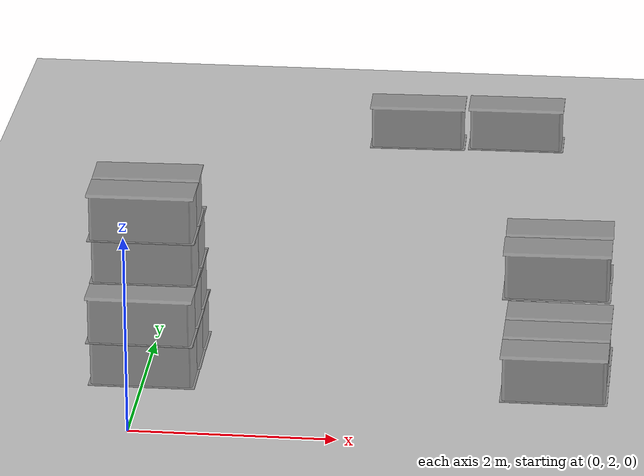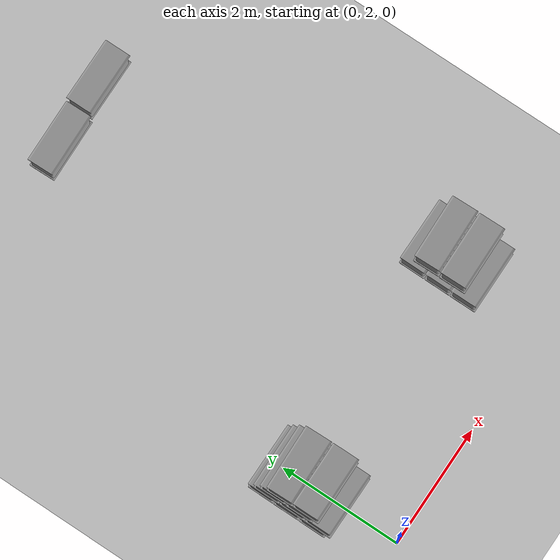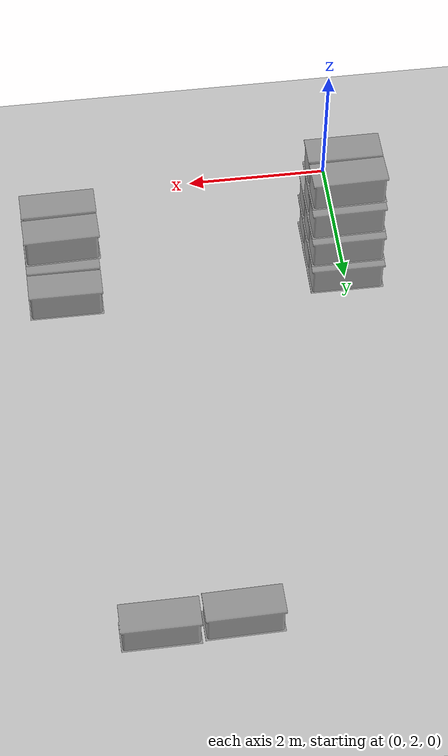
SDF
<sdf version="1.7">
 <world name="default">
  <model name="ground_plane">
   <static>1</static>
   <link name="link">
    <collision name="collision">
     <geometry><plane><normal>0 0 1</normal><size>100 100</size></plane></geometry>
     <surface><friction><ode><mu>100</mu><mu2>50</mu2></ode></friction></surface>
    </collision>
    <visual name="visual">
     <cast_shadows>0</cast_shadows>
     <geometry><plane><normal>0 0 1</normal><size>100 100</size></plane></geometry>
     <material>
      <script><uri>file://media/materials/scripts/gazebo.material</uri><name>Gazebo/Grey</name></script>
     </material>
    </visual>
   </link>
  </model>
  <model name="my_robot8">
   <link name="link_0">
    <inertial>
     <mass>1</mass>
     <inertia>
      <ixx>0.166667</ixx>
      <ixy>0</ixy>
      <ixz>0</ixz>
      <iyy>0.166667</iyy>
      <iyz>0</iyz>
      <izz>0.166667</izz>
     </inertia>
    </inertial>
    <visual name="visual">
     <geometry><mesh><uri>/home/cyun/cotton_box.stl</uri><scale>1 1 1</scale></mesh></geometry>
     <material>
      <lighting>1</lighting>
      <script><uri>file://media/materials/scripts/gazebo.material</uri><name>Gazebo/Grey</name></script>
      <shader type="pixel"><normal_map>__default__</normal_map></shader>
      <ambient>0.3 0.3 0.3 1</ambient>
      <diffuse>0.7 0.7 0.7 1</diffuse>
      <specular>0.01 0.01 0.01 1</specular>
      <emissive>0 0 0 1</emissive>
     </material>
    </visual>
    <collision name="collision">
     <geometry><mesh><uri>/home/cyun/cotton_box.stl</uri><scale>1 1 1</scale></mesh></geometry>
     <surface>
      <friction>
       <ode><mu>1</mu><mu2>1</mu2><fdir1>0 0 0</fdir1><slip1>0</slip1><slip2>0</slip2></ode>
       <torsional>
        <coefficient>1</coefficient>
        <patch_radius>0</patch_radius>
        <surface_radius>0</surface_radius>
        <use_patch_radius>1</use_patch_radius>
        <ode><slip>0</slip></ode>
       </torsional>
      </friction>
      <bounce><restitution_coefficient>0</restitution_coefficient><threshold>1e+06</threshold></bounce>
      <contact>
       <collide_without_contact>0</collide_without_contact>
       <collide_without_contact_bitmask>1</collide_without_contact_bitmask>
       <collide_bitmask>1</collide_bitmask>
       <ode>
        <soft_cfm>0</soft_cfm>
        <soft_erp>0.2</soft_erp>
        <kp>1e+13</kp>
        <kd>1</kd>
        <max_vel>0.01</max_vel>
        <min_depth>0</min_depth>
       </ode>
       <bullet>
        <split_impulse>1</split_impulse>
        <split_impulse_penetration_threshold>-0.01</split_impulse_penetration_threshold>
        <soft_cfm>0</soft_cfm>
        <soft_erp>0.2</soft_erp>
        <kp>1e+13</kp>
        <kd>1</kd>
       </bullet>
      </contact>
     </surface>
    </collision>
   </link>
   <static>0</static>
   <pose>-0.001761 3.15029 0.02 -2e-06 -1e-06 1.57546</pose>
  </model>
  <model name="my_robot9">
   <link name="link_0">
    <inertial>
     <mass>1</mass>
     <inertia>
      <ixx>0.166667</ixx>
      <ixy>0</ixy>
      <ixz>0</ixz>
      <iyy>0.166667</iyy>
      <iyz>0</iyz>
      <izz>0.166667</izz>
     </inertia>
    </inertial>
    <visual name="visual">
     <geometry><mesh><uri>/home/cyun/cotton_box.stl</uri><scale>1 1 1</scale></mesh></geometry>
     <material>
      <lighting>1</lighting>
      <script><uri>file://media/materials/scripts/gazebo.material</uri><name>Gazebo/Grey</name></script>
      <shader type="pixel"><normal_map>__default__</normal_map></shader>
      <ambient>0.3 0.3 0.3 1</ambient>
      <diffuse>0.7 0.7 0.7 1</diffuse>
      <specular>0.01 0.01 0.01 1</specular>
      <emissive>0 0 0 1</emissive>
     </material>
    </visual>
    <collision name="collision">
     <geometry><mesh><uri>/home/cyun/cotton_box.stl</uri><scale>1 1 1</scale></mesh></geometry>
     <surface>
      <friction>
       <ode><mu>1</mu><mu2>1</mu2><fdir1>0 0 0</fdir1><slip1>0</slip1><slip2>0</slip2></ode>
       <torsional>
        <coefficient>1</coefficient>
        <patch_radius>0</patch_radius>
        <surface_radius>0</surface_radius>
        <use_patch_radius>1</use_patch_radius>
        <ode><slip>0</slip></ode>
       </torsional>
      </friction>
      <bounce><restitution_coefficient>0</restitution_coefficient><threshold>1e+06</threshold></bounce>
      <contact>
       <collide_without_contact>0</collide_without_contact>
       <collide_without_contact_bitmask>1</collide_without_contact_bitmask>
       <collide_bitmask>1</collide_bitmask>
       <ode>
        <soft_cfm>0</soft_cfm>
        <soft_erp>0.2</soft_erp>
        <kp>1e+13</kp>
        <kd>1</kd>
        <max_vel>0.01</max_vel>
        <min_depth>0</min_depth>
       </ode>
       <bullet>
        <split_impulse>1</split_impulse>
        <split_impulse_penetration_threshold>-0.01</split_impulse_penetration_threshold>
        <soft_cfm>0</soft_cfm>
        <soft_erp>0.2</soft_erp>
        <kp>1e+13</kp>
        <kd>1</kd>
       </bullet>
      </contact>
     </surface>
    </collision>
   </link>
   <static>0</static>
   <pose>-0.000303 3.6022 0.019902 0.000213 0.000655 1.57922</pose>
  </model>
  <model name="my_robot10">
   <link name="link_0">
    <inertial>
     <mass>1</mass>
     <inertia>
      <ixx>0.166667</ixx>
      <ixy>0</ixy>
      <ixz>0</ixz>
      <iyy>0.166667</iyy>
      <iyz>0</iyz>
      <izz>0.166667</izz>
     </inertia>
    </inertial>
    <visual name="visual">
     <geometry><mesh><uri>/home/cyun/cotton_box.stl</uri><scale>1 1 1</scale></mesh></geometry>
     <material>
      <lighting>1</lighting>
      <script><uri>file://media/materials/scripts/gazebo.material</uri><name>Gazebo/Grey</name></script>
      <shader type="pixel"><normal_map>__default__</normal_map></shader>
      <ambient>0.3 0.3 0.3 1</ambient>
      <diffuse>0.7 0.7 0.7 1</diffuse>
      <specular>0.01 0.01 0.01 1</specular>
      <emissive>0 0 0 1</emissive>
     </material>
    </visual>
    <collision name="collision">
     <geometry><mesh><uri>/home/cyun/cotton_box.stl</uri><scale>1 1 1</scale></mesh></geometry>
     <surface>
      <friction>
       <ode><mu>1</mu><mu2>1</mu2><fdir1>0 0 0</fdir1><slip1>0</slip1><slip2>0</slip2></ode>
       <torsional>
        <coefficient>1</coefficient>
        <patch_radius>0</patch_radius>
        <surface_radius>0</surface_radius>
        <use_patch_radius>1</use_patch_radius>
        <ode><slip>0</slip></ode>
       </torsional>
      </friction>
      <bounce><restitution_coefficient>0</restitution_coefficient><threshold>1e+06</threshold></bounce>
      <contact>
       <collide_without_contact>0</collide_without_contact>
       <collide_without_contact_bitmask>1</collide_without_contact_bitmask>
       <collide_bitmask>1</collide_bitmask>
       <ode>
        <soft_cfm>0</soft_cfm>
        <soft_erp>0.2</soft_erp>
        <kp>1e+13</kp>
        <kd>1</kd>
        <max_vel>0.01</max_vel>
        <min_depth>0</min_depth>
       </ode>
       <bullet>
        <split_impulse>1</split_impulse>
        <split_impulse_penetration_threshold>-0.01</split_impulse_penetration_threshold>
        <soft_cfm>0</soft_cfm>
        <soft_erp>0.2</soft_erp>
        <kp>1e+13</kp>
        <kd>1</kd>
       </bullet>
      </contact>
     </surface>
    </collision>
   </link>
   <static>0</static>
   <pose>0.001042 4.04938 0.019956 5e-06 2.8e-05 1.56739</pose>
  </model>
  <model name="my_robot17">
   <link name="link_0">
    <inertial>
     <mass>1</mass>
     <inertia>
      <ixx>0.166667</ixx>
      <ixy>0</ixy>
      <ixz>0</ixz>
      <iyy>0.166667</iyy>
      <iyz>0</iyz>
      <izz>0.166667</izz>
     </inertia>
    </inertial>
    <visual name="visual">
     <geometry><mesh><uri>/home/cyun/cotton_box.stl</uri><scale>1 1 1</scale></mesh></geometry>
     <material>
      <lighting>1</lighting>
      <script><uri>file://media/materials/scripts/gazebo.material</uri><name>Gazebo/Grey</name></script>
      <shader type="pixel"><normal_map>__default__</normal_map></shader>
      <ambient>0.3 0.3 0.3 1</ambient>
      <diffuse>0.7 0.7 0.7 1</diffuse>
      <specular>0.01 0.01 0.01 1</specular>
      <emissive>0 0 0 1</emissive>
     </material>
    </visual>
    <collision name="collision">
     <geometry><mesh><uri>/home/cyun/cotton_box.stl</uri><scale>1 1 1</scale></mesh></geometry>
     <surface>
      <friction>
       <ode><mu>1</mu><mu2>1</mu2><fdir1>0 0 0</fdir1><slip1>0</slip1><slip2>0</slip2></ode>
       <torsional>
        <coefficient>1</coefficient>
        <patch_radius>0</patch_radius>
        <surface_radius>0</surface_radius>
        <use_patch_radius>1</use_patch_radius>
        <ode><slip>0</slip></ode>
       </torsional>
      </friction>
      <bounce><restitution_coefficient>0</restitution_coefficient><threshold>1e+06</threshold></bounce>
      <contact>
       <collide_without_contact>0</collide_without_contact>
       <collide_without_contact_bitmask>1</collide_without_contact_bitmask>
       <collide_bitmask>1</collide_bitmask>
       <ode>
        <soft_cfm>0</soft_cfm>
        <soft_erp>0.2</soft_erp>
        <kp>1e+13</kp>
        <kd>1</kd>
        <max_vel>0.01</max_vel>
        <min_depth>0</min_depth>
       </ode>
       <bullet>
        <split_impulse>1</split_impulse>
        <split_impulse_penetration_threshold>-0.01</split_impulse_penetration_threshold>
        <soft_cfm>0</soft_cfm>
        <soft_erp>0.2</soft_erp>
        <kp>1e+13</kp>
        <kd>1</kd>
       </bullet>
      </contact>
     </surface>
    </collision>
   </link>
   <static>0</static>
   <pose>-0.000202 3.05141 0.510106 4.1e-05 0.00044 1.56687</pose>
  </model>
  <model name="my_robot18">
   <link name="link_0">
    <inertial>
     <mass>1</mass>
     <inertia>
      <ixx>0.166667</ixx>
      <ixy>0</ixy>
      <ixz>0</ixz>
      <iyy>0.166667</iyy>
      <iyz>0</iyz>
      <izz>0.166667</izz>
     </inertia>
    </inertial>
    <visual name="visual">
     <geometry><mesh><uri>/home/cyun/cotton_box.stl</uri><scale>1 1 1</scale></mesh></geometry>
     <material>
      <lighting>1</lighting>
      <script><uri>file://media/materials/scripts/gazebo.material</uri><name>Gazebo/Grey</name></script>
      <shader type="pixel"><normal_map>__default__</normal_map></shader>
      <ambient>0.3 0.3 0.3 1</ambient>
      <diffuse>0.7 0.7 0.7 1</diffuse>
      <specular>0.01 0.01 0.01 1</specular>
      <emissive>0 0 0 1</emissive>
     </material>
    </visual>
    <collision name="collision">
     <geometry><mesh><uri>/home/cyun/cotton_box.stl</uri><scale>1 1 1</scale></mesh></geometry>
     <surface>
      <friction>
       <ode><mu>1</mu><mu2>1</mu2><fdir1>0 0 0</fdir1><slip1>0</slip1><slip2>0</slip2></ode>
       <torsional>
        <coefficient>1</coefficient>
        <patch_radius>0</patch_radius>
        <surface_radius>0</surface_radius>
        <use_patch_radius>1</use_patch_radius>
        <ode><slip>0</slip></ode>
       </torsional>
      </friction>
      <bounce><restitution_coefficient>0</restitution_coefficient><threshold>1e+06</threshold></bounce>
      <contact>
       <collide_without_contact>0</collide_without_contact>
       <collide_without_contact_bitmask>1</collide_without_contact_bitmask>
       <collide_bitmask>1</collide_bitmask>
       <ode>
        <soft_cfm>0</soft_cfm>
        <soft_erp>0.2</soft_erp>
        <kp>1e+13</kp>
        <kd>1</kd>
        <max_vel>0.01</max_vel>
        <min_depth>0</min_depth>
       </ode>
       <bullet>
        <split_impulse>1</split_impulse>
        <split_impulse_penetration_threshold>-0.01</split_impulse_penetration_threshold>
        <soft_cfm>0</soft_cfm>
        <soft_erp>0.2</soft_erp>
        <kp>1e+13</kp>
        <kd>1</kd>
       </bullet>
      </contact>
     </surface>
    </collision>
   </link>
   <static>0</static>
   <pose>0.002374 3.50226 0.510003 0.000203 0.000845 1.56301</pose>
  </model>
  <model name="my_robot19">
   <link name="link_0">
    <inertial>
     <mass>1</mass>
     <inertia>
      <ixx>0.166667</ixx>
      <ixy>0</ixy>
      <ixz>0</ixz>
      <iyy>0.166667</iyy>
      <iyz>0</iyz>
      <izz>0.166667</izz>
     </inertia>
    </inertial>
    <visual name="visual">
     <geometry><mesh><uri>/home/cyun/cotton_box.stl</uri><scale>1 1 1</scale></mesh></geometry>
     <material>
      <lighting>1</lighting>
      <script><uri>file://media/materials/scripts/gazebo.material</uri><name>Gazebo/Grey</name></script>
      <shader type="pixel"><normal_map>__default__</normal_map></shader>
      <ambient>0.3 0.3 0.3 1</ambient>
      <diffuse>0.7 0.7 0.7 1</diffuse>
      <specular>0.01 0.01 0.01 1</specular>
      <emissive>0 0 0 1</emissive>
     </material>
    </visual>
    <collision name="collision">
     <geometry><mesh><uri>/home/cyun/cotton_box.stl</uri><scale>1 1 1</scale></mesh></geometry>
     <surface>
      <friction>
       <ode><mu>1</mu><mu2>1</mu2><fdir1>0 0 0</fdir1><slip1>0</slip1><slip2>0</slip2></ode>
       <torsional>
        <coefficient>1</coefficient>
        <patch_radius>0</patch_radius>
        <surface_radius>0</surface_radius>
        <use_patch_radius>1</use_patch_radius>
        <ode><slip>0</slip></ode>
       </torsional>
      </friction>
      <bounce><restitution_coefficient>0</restitution_coefficient><threshold>1e+06</threshold></bounce>
      <contact>
       <collide_without_contact>0</collide_without_contact>
       <collide_without_contact_bitmask>1</collide_without_contact_bitmask>
       <collide_bitmask>1</collide_bitmask>
       <ode>
        <soft_cfm>0</soft_cfm>
        <soft_erp>0.2</soft_erp>
        <kp>1e+13</kp>
        <kd>1</kd>
        <max_vel>0.01</max_vel>
        <min_depth>0</min_depth>
       </ode>
       <bullet>
        <split_impulse>1</split_impulse>
        <split_impulse_penetration_threshold>-0.01</split_impulse_penetration_threshold>
        <soft_cfm>0</soft_cfm>
        <soft_erp>0.2</soft_erp>
        <kp>1e+13</kp>
        <kd>1</kd>
       </bullet>
      </contact>
     </surface>
    </collision>
   </link>
   <static>0</static>
   <pose>-0.000678 3.95328 0.510037 0.000104 0.00017 1.57537</pose>
  </model>
  <model name="my_robot26">
   <link name="link_0">
    <inertial>
     <mass>1</mass>
     <inertia>
      <ixx>0.166667</ixx>
      <ixy>0</ixy>
      <ixz>0</ixz>
      <iyy>0.166667</iyy>
      <iyz>0</iyz>
      <izz>0.166667</izz>
     </inertia>
    </inertial>
    <visual name="visual">
     <geometry><mesh><uri>/home/cyun/cotton_box.stl</uri><scale>1 1 1</scale></mesh></geometry>
     <material>
      <lighting>1</lighting>
      <script><uri>file://media/materials/scripts/gazebo.material</uri><name>Gazebo/Grey</name></script>
      <shader type="pixel"><normal_map>__default__</normal_map></shader>
      <ambient>0.3 0.3 0.3 1</ambient>
      <diffuse>0.7 0.7 0.7 1</diffuse>
      <specular>0.01 0.01 0.01 1</specular>
      <emissive>0 0 0 1</emissive>
     </material>
    </visual>
    <collision name="collision">
     <geometry><mesh><uri>/home/cyun/cotton_box.stl</uri><scale>1 1 1</scale></mesh></geometry>
     <surface>
      <friction>
       <ode><mu>1</mu><mu2>1</mu2><fdir1>0 0 0</fdir1><slip1>0</slip1><slip2>0</slip2></ode>
       <torsional>
        <coefficient>1</coefficient>
        <patch_radius>0</patch_radius>
        <surface_radius>0</surface_radius>
        <use_patch_radius>1</use_patch_radius>
        <ode><slip>0</slip></ode>
       </torsional>
      </friction>
      <bounce><restitution_coefficient>0</restitution_coefficient><threshold>1e+06</threshold></bounce>
      <contact>
       <collide_without_contact>0</collide_without_contact>
       <collide_without_contact_bitmask>1</collide_without_contact_bitmask>
       <collide_bitmask>1</collide_bitmask>
       <ode>
        <soft_cfm>0</soft_cfm>
        <soft_erp>0.2</soft_erp>
        <kp>1e+13</kp>
        <kd>1</kd>
        <max_vel>0.01</max_vel>
        <min_depth>0</min_depth>
       </ode>
       <bullet>
        <split_impulse>1</split_impulse>
        <split_impulse_penetration_threshold>-0.01</split_impulse_penetration_threshold>
        <soft_cfm>0</soft_cfm>
        <soft_erp>0.2</soft_erp>
        <kp>1e+13</kp>
        <kd>1</kd>
       </bullet>
      </contact>
     </surface>
    </collision>
   </link>
   <static>0</static>
   <pose>-0.001078 3.38905 1.00016 7e-05 0.001624 1.58176</pose>
  </model>
  <model name="my_robot27">
   <link name="link_0">
    <inertial>
     <mass>1</mass>
     <inertia>
      <ixx>0.166667</ixx>
      <ixy>0</ixy>
      <ixz>0</ixz>
      <iyy>0.166667</iyy>
      <iyz>0</iyz>
      <izz>0.166667</izz>
     </inertia>
    </inertial>
    <visual name="visual">
     <geometry><mesh><uri>/home/cyun/cotton_box.stl</uri><scale>1 1 1</scale></mesh></geometry>
     <material>
      <lighting>1</lighting>
      <script><uri>file://media/materials/scripts/gazebo.material</uri><name>Gazebo/Grey</name></script>
      <shader type="pixel"><normal_map>__default__</normal_map></shader>
      <ambient>0.3 0.3 0.3 1</ambient>
      <diffuse>0.7 0.7 0.7 1</diffuse>
      <specular>0.01 0.01 0.01 1</specular>
      <emissive>0 0 0 1</emissive>
     </material>
    </visual>
    <collision name="collision">
     <geometry><mesh><uri>/home/cyun/cotton_box.stl</uri><scale>1 1 1</scale></mesh></geometry>
     <surface>
      <friction>
       <ode><mu>1</mu><mu2>1</mu2><fdir1>0 0 0</fdir1><slip1>0</slip1><slip2>0</slip2></ode>
       <torsional>
        <coefficient>1</coefficient>
        <patch_radius>0</patch_radius>
        <surface_radius>0</surface_radius>
        <use_patch_radius>1</use_patch_radius>
        <ode><slip>0</slip></ode>
       </torsional>
      </friction>
      <bounce><restitution_coefficient>0</restitution_coefficient><threshold>1e+06</threshold></bounce>
      <contact>
       <collide_without_contact>0</collide_without_contact>
       <collide_without_contact_bitmask>1</collide_without_contact_bitmask>
       <collide_bitmask>1</collide_bitmask>
       <ode>
        <soft_cfm>0</soft_cfm>
        <soft_erp>0.2</soft_erp>
        <kp>1e+13</kp>
        <kd>1</kd>
        <max_vel>0.01</max_vel>
        <min_depth>0</min_depth>
       </ode>
       <bullet>
        <split_impulse>1</split_impulse>
        <split_impulse_penetration_threshold>-0.01</split_impulse_penetration_threshold>
        <soft_cfm>0</soft_cfm>
        <soft_erp>0.2</soft_erp>
        <kp>1e+13</kp>
        <kd>1</kd>
       </bullet>
      </contact>
     </surface>
    </collision>
   </link>
   <static>0</static>
   <pose>0.001963 3.84587 1.0001 0.000144 0.000245 1.58589</pose>
  </model>
  <model name="my_robot33">
   <link name="link_0">
    <inertial>
     <mass>1</mass>
     <inertia>
      <ixx>0.166667</ixx>
      <ixy>0</ixy>
      <ixz>0</ixz>
      <iyy>0.166667</iyy>
      <iyz>0</iyz>
      <izz>0.166667</izz>
     </inertia>
    </inertial>
    <visual name="visual">
     <geometry><mesh><uri>/home/cyun/cotton_box.stl</uri><scale>1 1 1</scale></mesh></geometry>
     <material>
      <lighting>1</lighting>
      <script><uri>file://media/materials/scripts/gazebo.material</uri><name>Gazebo/Grey</name></script>
      <shader type="pixel"><normal_map>__default__</normal_map></shader>
      <ambient>0.3 0.3 0.3 1</ambient>
      <diffuse>0.7 0.7 0.7 1</diffuse>
      <specular>0.01 0.01 0.01 1</specular>
      <emissive>0 0 0 1</emissive>
     </material>
    </visual>
    <collision name="collision">
     <geometry><mesh><uri>/home/cyun/cotton_box.stl</uri><scale>1 1 1</scale></mesh></geometry>
     <surface>
      <friction>
       <ode><mu>1</mu><mu2>1</mu2><fdir1>0 0 0</fdir1><slip1>0</slip1><slip2>0</slip2></ode>
       <torsional>
        <coefficient>1</coefficient>
        <patch_radius>0</patch_radius>
        <surface_radius>0</surface_radius>
        <use_patch_radius>1</use_patch_radius>
        <ode><slip>0</slip></ode>
       </torsional>
      </friction>
      <bounce><restitution_coefficient>0</restitution_coefficient><threshold>1e+06</threshold></bounce>
      <contact>
       <collide_without_contact>0</collide_without_contact>
       <collide_without_contact_bitmask>1</collide_without_contact_bitmask>
       <collide_bitmask>1</collide_bitmask>
       <ode>
        <soft_cfm>0</soft_cfm>
        <soft_erp>0.2</soft_erp>
        <kp>1e+13</kp>
        <kd>1</kd>
        <max_vel>0.01</max_vel>
        <min_depth>0</min_depth>
       </ode>
       <bullet>
        <split_impulse>1</split_impulse>
        <split_impulse_penetration_threshold>-0.01</split_impulse_penetration_threshold>
        <soft_cfm>0</soft_cfm>
        <soft_erp>0.2</soft_erp>
        <kp>1e+13</kp>
        <kd>1</kd>
       </bullet>
      </contact>
     </surface>
    </collision>
   </link>
   <static>0</static>
   <pose>0.00068 3.27751 1.49032 -1.3e-05 0.001623 1.57528</pose>
  </model>
  <model name="my_robot34">
   <link name="link_0">
    <inertial>
     <mass>1</mass>
     <inertia>
      <ixx>0.166667</ixx>
      <ixy>0</ixy>
      <ixz>0</ixz>
      <iyy>0.166667</iyy>
      <iyz>0</iyz>
      <izz>0.166667</izz>
     </inertia>
    </inertial>
    <visual name="visual">
     <geometry><mesh><uri>/home/cyun/cotton_box.stl</uri><scale>1 1 1</scale></mesh></geometry>
     <material>
      <lighting>1</lighting>
      <script><uri>file://media/materials/scripts/gazebo.material</uri><name>Gazebo/Grey</name></script>
      <shader type="pixel"><normal_map>__default__</normal_map></shader>
      <ambient>0.3 0.3 0.3 1</ambient>
      <diffuse>0.7 0.7 0.7 1</diffuse>
      <specular>0.01 0.01 0.01 1</specular>
      <emissive>0 0 0 1</emissive>
     </material>
    </visual>
    <collision name="collision">
     <geometry><mesh><uri>/home/cyun/cotton_box.stl</uri><scale>1 1 1</scale></mesh></geometry>
     <surface>
      <friction>
       <ode><mu>1</mu><mu2>1</mu2><fdir1>0 0 0</fdir1><slip1>0</slip1><slip2>0</slip2></ode>
       <torsional>
        <coefficient>1</coefficient>
        <patch_radius>0</patch_radius>
        <surface_radius>0</surface_radius>
        <use_patch_radius>1</use_patch_radius>
        <ode><slip>0</slip></ode>
       </torsional>
      </friction>
      <bounce><restitution_coefficient>0</restitution_coefficient><threshold>1e+06</threshold></bounce>
      <contact>
       <collide_without_contact>0</collide_without_contact>
       <collide_without_contact_bitmask>1</collide_without_contact_bitmask>
       <collide_bitmask>1</collide_bitmask>
       <ode>
        <soft_cfm>0</soft_cfm>
        <soft_erp>0.2</soft_erp>
        <kp>1e+13</kp>
        <kd>1</kd>
        <max_vel>0.01</max_vel>
        <min_depth>0</min_depth>
       </ode>
       <bullet>
        <split_impulse>1</split_impulse>
        <split_impulse_penetration_threshold>-0.01</split_impulse_penetration_threshold>
        <soft_cfm>0</soft_cfm>
        <soft_erp>0.2</soft_erp>
        <kp>1e+13</kp>
        <kd>1</kd>
       </bullet>
      </contact>
     </surface>
    </collision>
   </link>
   <static>0</static>
   <pose>-0.005398 3.72731 1.49017 0.000214 0.000338 1.59186</pose>
  </model>
  <model name="my_robot42">
   <link name="link_0">
    <inertial>
     <mass>1</mass>
     <inertia>
      <ixx>0.166667</ixx>
      <ixy>0</ixy>
      <ixz>0</ixz>
      <iyy>0.166667</iyy>
      <iyz>0</iyz>
      <izz>0.166667</izz>
     </inertia>
    </inertial>
    <visual name="visual">
     <geometry><mesh><uri>/home/cyun/cotton_box.stl</uri><scale>1 1 1</scale></mesh></geometry>
     <material>
      <lighting>1</lighting>
      <script><uri>file://media/materials/scripts/gazebo.material</uri><name>Gazebo/Grey</name></script>
      <shader type="pixel"><normal_map>__default__</normal_map></shader>
      <ambient>0.3 0.3 0.3 1</ambient>
      <diffuse>0.7 0.7 0.7 1</diffuse>
      <specular>0.01 0.01 0.01 1</specular>
      <emissive>0 0 0 1</emissive>
     </material>
    </visual>
    <collision name="collision">
     <geometry><mesh><uri>/home/cyun/cotton_box.stl</uri><scale>1 1 1</scale></mesh></geometry>
     <surface>
      <friction>
       <ode><mu>1</mu><mu2>1</mu2><fdir1>0 0 0</fdir1><slip1>0</slip1><slip2>0</slip2></ode>
       <torsional>
        <coefficient>1</coefficient>
        <patch_radius>0</patch_radius>
        <surface_radius>0</surface_radius>
        <use_patch_radius>1</use_patch_radius>
        <ode><slip>0</slip></ode>
       </torsional>
      </friction>
      <bounce><restitution_coefficient>0</restitution_coefficient><threshold>1e+06</threshold></bounce>
      <contact>
       <collide_without_contact>0</collide_without_contact>
       <collide_without_contact_bitmask>1</collide_without_contact_bitmask>
       <collide_bitmask>1</collide_bitmask>
       <ode>
        <soft_cfm>0</soft_cfm>
        <soft_erp>0.2</soft_erp>
        <kp>1e+13</kp>
        <kd>1</kd>
        <max_vel>0.01</max_vel>
        <min_depth>0</min_depth>
       </ode>
       <bullet>
        <split_impulse>1</split_impulse>
        <split_impulse_penetration_threshold>-0.01</split_impulse_penetration_threshold>
        <soft_cfm>0</soft_cfm>
        <soft_erp>0.2</soft_erp>
        <kp>1e+13</kp>
        <kd>1</kd>
       </bullet>
      </contact>
     </surface>
    </collision>
   </link>
   <static>0</static>
   <pose>3.99946 3.15099 0.02 0 -0 1.57277</pose>
  </model>
  <model name="my_robot43">
   <link name="link_0">
    <inertial>
     <mass>1</mass>
     <inertia>
      <ixx>0.166667</ixx>
      <ixy>0</ixy>
      <ixz>0</ixz>
      <iyy>0.166667</iyy>
      <iyz>0</iyz>
      <izz>0.166667</izz>
     </inertia>
    </inertial>
    <visual name="visual">
     <geometry><mesh><uri>/home/cyun/cotton_box.stl</uri><scale>1 1 1</scale></mesh></geometry>
     <material>
      <lighting>1</lighting>
      <script><uri>file://media/materials/scripts/gazebo.material</uri><name>Gazebo/Grey</name></script>
      <shader type="pixel"><normal_map>__default__</normal_map></shader>
      <ambient>0.3 0.3 0.3 1</ambient>
      <diffuse>0.7 0.7 0.7 1</diffuse>
      <specular>0.01 0.01 0.01 1</specular>
      <emissive>0 0 0 1</emissive>
     </material>
    </visual>
    <collision name="collision">
     <geometry><mesh><uri>/home/cyun/cotton_box.stl</uri><scale>1 1 1</scale></mesh></geometry>
     <surface>
      <friction>
       <ode><mu>1</mu><mu2>1</mu2><fdir1>0 0 0</fdir1><slip1>0</slip1><slip2>0</slip2></ode>
       <torsional>
        <coefficient>1</coefficient>
        <patch_radius>0</patch_radius>
        <surface_radius>0</surface_radius>
        <use_patch_radius>1</use_patch_radius>
        <ode><slip>0</slip></ode>
       </torsional>
      </friction>
      <bounce><restitution_coefficient>0</restitution_coefficient><threshold>1e+06</threshold></bounce>
      <contact>
       <collide_without_contact>0</collide_without_contact>
       <collide_without_contact_bitmask>1</collide_without_contact_bitmask>
       <collide_bitmask>1</collide_bitmask>
       <ode>
        <soft_cfm>0</soft_cfm>
        <soft_erp>0.2</soft_erp>
        <kp>1e+13</kp>
        <kd>1</kd>
        <max_vel>0.01</max_vel>
        <min_depth>0</min_depth>
       </ode>
       <bullet>
        <split_impulse>1</split_impulse>
        <split_impulse_penetration_threshold>-0.01</split_impulse_penetration_threshold>
        <soft_cfm>0</soft_cfm>
        <soft_erp>0.2</soft_erp>
        <kp>1e+13</kp>
        <kd>1</kd>
       </bullet>
      </contact>
     </surface>
    </collision>
   </link>
   <static>0</static>
   <pose>3.99998 3.60075 0.019997 -6e-06 -0 1.57184</pose>
  </model>
  <model name="my_robot44">
   <link name="link_0">
    <inertial>
     <mass>1</mass>
     <inertia>
      <ixx>0.166667</ixx>
      <ixy>0</ixy>
      <ixz>0</ixz>
      <iyy>0.166667</iyy>
      <iyz>0</iyz>
      <izz>0.166667</izz>
     </inertia>
    </inertial>
    <visual name="visual">
     <geometry><mesh><uri>/home/cyun/cotton_box.stl</uri><scale>1 1 1</scale></mesh></geometry>
     <material>
      <lighting>1</lighting>
      <script><uri>file://media/materials/scripts/gazebo.material</uri><name>Gazebo/Grey</name></script>
      <shader type="pixel"><normal_map>__default__</normal_map></shader>
      <ambient>0.3 0.3 0.3 1</ambient>
      <diffuse>0.7 0.7 0.7 1</diffuse>
      <specular>0.01 0.01 0.01 1</specular>
      <emissive>0 0 0 1</emissive>
     </material>
    </visual>
    <collision name="collision">
     <geometry><mesh><uri>/home/cyun/cotton_box.stl</uri><scale>1 1 1</scale></mesh></geometry>
     <surface>
      <friction>
       <ode><mu>1</mu><mu2>1</mu2><fdir1>0 0 0</fdir1><slip1>0</slip1><slip2>0</slip2></ode>
       <torsional>
        <coefficient>1</coefficient>
        <patch_radius>0</patch_radius>
        <surface_radius>0</surface_radius>
        <use_patch_radius>1</use_patch_radius>
        <ode><slip>0</slip></ode>
       </torsional>
      </friction>
      <bounce><restitution_coefficient>0</restitution_coefficient><threshold>1e+06</threshold></bounce>
      <contact>
       <collide_without_contact>0</collide_without_contact>
       <collide_without_contact_bitmask>1</collide_without_contact_bitmask>
       <collide_bitmask>1</collide_bitmask>
       <ode>
        <soft_cfm>0</soft_cfm>
        <soft_erp>0.2</soft_erp>
        <kp>1e+13</kp>
        <kd>1</kd>
        <max_vel>0.01</max_vel>
        <min_depth>0</min_depth>
       </ode>
       <bullet>
        <split_impulse>1</split_impulse>
        <split_impulse_penetration_threshold>-0.01</split_impulse_penetration_threshold>
        <soft_cfm>0</soft_cfm>
        <soft_erp>0.2</soft_erp>
        <kp>1e+13</kp>
        <kd>1</kd>
       </bullet>
      </contact>
     </surface>
    </collision>
   </link>
   <static>0</static>
   <pose>4.00038 4.04662 0.02 -0 3e-06 1.56706</pose>
  </model>
  <model name="my_robot60">
   <link name="link_0">
    <inertial>
     <mass>1</mass>
     <inertia>
      <ixx>0.166667</ixx>
      <ixy>0</ixy>
      <ixz>0</ixz>
      <iyy>0.166667</iyy>
      <iyz>0</iyz>
      <izz>0.166667</izz>
     </inertia>
    </inertial>
    <visual name="visual">
     <geometry><mesh><uri>/home/cyun/cotton_box.stl</uri><scale>1 1 1</scale></mesh></geometry>
     <material>
      <lighting>1</lighting>
      <script><uri>file://media/materials/scripts/gazebo.material</uri><name>Gazebo/Grey</name></script>
      <shader type="pixel"><normal_map>__default__</normal_map></shader>
      <ambient>0.3 0.3 0.3 1</ambient>
      <diffuse>0.7 0.7 0.7 1</diffuse>
      <specular>0.01 0.01 0.01 1</specular>
      <emissive>0 0 0 1</emissive>
     </material>
    </visual>
    <collision name="collision">
     <geometry><mesh><uri>/home/cyun/cotton_box.stl</uri><scale>1 1 1</scale></mesh></geometry>
     <surface>
      <friction>
       <ode><mu>1</mu><mu2>1</mu2><fdir1>0 0 0</fdir1><slip1>0</slip1><slip2>0</slip2></ode>
       <torsional>
        <coefficient>1</coefficient>
        <patch_radius>0</patch_radius>
        <surface_radius>0</surface_radius>
        <use_patch_radius>1</use_patch_radius>
        <ode><slip>0</slip></ode>
       </torsional>
      </friction>
      <bounce><restitution_coefficient>0</restitution_coefficient><threshold>1e+06</threshold></bounce>
      <contact>
       <collide_without_contact>0</collide_without_contact>
       <collide_without_contact_bitmask>1</collide_without_contact_bitmask>
       <collide_bitmask>1</collide_bitmask>
       <ode>
        <soft_cfm>0</soft_cfm>
        <soft_erp>0.2</soft_erp>
        <kp>1e+13</kp>
        <kd>1</kd>
        <max_vel>0.01</max_vel>
        <min_depth>0</min_depth>
       </ode>
       <bullet>
        <split_impulse>1</split_impulse>
        <split_impulse_penetration_threshold>-0.01</split_impulse_penetration_threshold>
        <soft_cfm>0</soft_cfm>
        <soft_erp>0.2</soft_erp>
        <kp>1e+13</kp>
        <kd>1</kd>
       </bullet>
      </contact>
     </surface>
    </collision>
   </link>
   <static>0</static>
   <pose>3.99861 3.39174 0.999969 9e-06 5.5e-05 1.58346</pose>
  </model>
  <model name="my_robot61">
   <link name="link_0">
    <inertial>
     <mass>1</mass>
     <inertia>
      <ixx>0.166667</ixx>
      <ixy>0</ixy>
      <ixz>0</ixz>
      <iyy>0.166667</iyy>
      <iyz>0</iyz>
      <izz>0.166667</izz>
     </inertia>
    </inertial>
    <visual name="visual">
     <geometry><mesh><uri>/home/cyun/cotton_box.stl</uri><scale>1 1 1</scale></mesh></geometry>
     <material>
      <lighting>1</lighting>
      <script><uri>file://media/materials/scripts/gazebo.material</uri><name>Gazebo/Grey</name></script>
      <shader type="pixel"><normal_map>__default__</normal_map></shader>
      <ambient>0.3 0.3 0.3 1</ambient>
      <diffuse>0.7 0.7 0.7 1</diffuse>
      <specular>0.01 0.01 0.01 1</specular>
      <emissive>0 0 0 1</emissive>
     </material>
    </visual>
    <collision name="collision">
     <geometry><mesh><uri>/home/cyun/cotton_box.stl</uri><scale>1 1 1</scale></mesh></geometry>
     <surface>
      <friction>
       <ode><mu>1</mu><mu2>1</mu2><fdir1>0 0 0</fdir1><slip1>0</slip1><slip2>0</slip2></ode>
       <torsional>
        <coefficient>1</coefficient>
        <patch_radius>0</patch_radius>
        <surface_radius>0</surface_radius>
        <use_patch_radius>1</use_patch_radius>
        <ode><slip>0</slip></ode>
       </torsional>
      </friction>
      <bounce><restitution_coefficient>0</restitution_coefficient><threshold>1e+06</threshold></bounce>
      <contact>
       <collide_without_contact>0</collide_without_contact>
       <collide_without_contact_bitmask>1</collide_without_contact_bitmask>
       <collide_bitmask>1</collide_bitmask>
       <ode>
        <soft_cfm>0</soft_cfm>
        <soft_erp>0.2</soft_erp>
        <kp>1e+13</kp>
        <kd>1</kd>
        <max_vel>0.01</max_vel>
        <min_depth>0</min_depth>
       </ode>
       <bullet>
        <split_impulse>1</split_impulse>
        <split_impulse_penetration_threshold>-0.01</split_impulse_penetration_threshold>
        <soft_cfm>0</soft_cfm>
        <soft_erp>0.2</soft_erp>
        <kp>1e+13</kp>
        <kd>1</kd>
       </bullet>
      </contact>
     </surface>
    </collision>
   </link>
   <static>0</static>
   <pose>3.99699 3.84643 0.999974 6e-06 4e-06 1.59413</pose>
  </model>
  <model name="my_robot1_clone_4_clone_clone_4">
   <link name="link_0">
    <inertial>
     <mass>1</mass>
     <inertia>
      <ixx>0.166667</ixx>
      <ixy>0</ixy>
      <ixz>0</ixz>
      <iyy>0.166667</iyy>
      <iyz>0</iyz>
      <izz>0.166667</izz>
     </inertia>
    </inertial>
    <visual name="visual">
     <geometry><mesh><uri>/home/cyun/cotton_box.stl</uri><scale>1 1 1</scale></mesh></geometry>
     <material>
      <lighting>1</lighting>
      <script><uri>file://media/materials/scripts/gazebo.material</uri><name>Gazebo/Grey</name></script>
      <shader type="pixel"><normal_map>__default__</normal_map></shader>
      <ambient>0.3 0.3 0.3 1</ambient>
      <diffuse>0.7 0.7 0.7 1</diffuse>
      <specular>0.01 0.01 0.01 1</specular>
      <emissive>0 0 0 1</emissive>
     </material>
    </visual>
    <collision name="collision">
     <geometry><mesh><uri>/home/cyun/cotton_box.stl</uri><scale>1 1 1</scale></mesh></geometry>
     <surface>
      <friction>
       <ode><mu>1</mu><mu2>1</mu2><fdir1>0 0 0</fdir1><slip1>0</slip1><slip2>0</slip2></ode>
       <torsional>
        <coefficient>1</coefficient>
        <patch_radius>0</patch_radius>
        <surface_radius>0</surface_radius>
        <use_patch_radius>1</use_patch_radius>
        <ode><slip>0</slip></ode>
       </torsional>
      </friction>
      <bounce><restitution_coefficient>0</restitution_coefficient><threshold>1e+06</threshold></bounce>
      <contact>
       <collide_without_contact>0</collide_without_contact>
       <collide_without_contact_bitmask>1</collide_without_contact_bitmask>
       <collide_bitmask>1</collide_bitmask>
       <ode>
        <soft_cfm>0</soft_cfm>
        <soft_erp>0.2</soft_erp>
        <kp>1e+13</kp>
        <kd>1</kd>
        <max_vel>0.01</max_vel>
        <min_depth>0</min_depth>
       </ode>
       <bullet>
        <split_impulse>1</split_impulse>
        <split_impulse_penetration_threshold>-0.01</split_impulse_penetration_threshold>
        <soft_cfm>0</soft_cfm>
        <soft_erp>0.2</soft_erp>
        <kp>1e+13</kp>
        <kd>1</kd>
       </bullet>
      </contact>
     </surface>
    </collision>
   </link>
   <static>0</static>
   <pose>2.18038 9.41496 0.019992 -1.6e-05 -0 1.58953</pose>
  </model>
  <model name="my_robot1_clone_4_clone_clone_5">
   <link name="link_0">
    <inertial>
     <mass>1</mass>
     <inertia>
      <ixx>0.166667</ixx>
      <ixy>0</ixy>
      <ixz>0</ixz>
      <iyy>0.166667</iyy>
      <iyz>0</iyz>
      <izz>0.166667</izz>
     </inertia>
    </inertial>
    <visual name="visual">
     <geometry><mesh><uri>/home/cyun/cotton_box.stl</uri><scale>1 1 1</scale></mesh></geometry>
     <material>
      <lighting>1</lighting>
      <script><uri>file://media/materials/scripts/gazebo.material</uri><name>Gazebo/Grey</name></script>
      <shader type="pixel"><normal_map>__default__</normal_map></shader>
      <ambient>0.3 0.3 0.3 1</ambient>
      <diffuse>0.7 0.7 0.7 1</diffuse>
      <specular>0.01 0.01 0.01 1</specular>
      <emissive>0 0 0 1</emissive>
     </material>
    </visual>
    <collision name="collision">
     <geometry><mesh><uri>/home/cyun/cotton_box.stl</uri><scale>1 1 1</scale></mesh></geometry>
     <surface>
      <friction>
       <ode><mu>1</mu><mu2>1</mu2><fdir1>0 0 0</fdir1><slip1>0</slip1><slip2>0</slip2></ode>
       <torsional>
        <coefficient>1</coefficient>
        <patch_radius>0</patch_radius>
        <surface_radius>0</surface_radius>
        <use_patch_radius>1</use_patch_radius>
        <ode><slip>0</slip></ode>
       </torsional>
      </friction>
      <bounce><restitution_coefficient>0</restitution_coefficient><threshold>1e+06</threshold></bounce>
      <contact>
       <collide_without_contact>0</collide_without_contact>
       <collide_without_contact_bitmask>1</collide_without_contact_bitmask>
       <collide_bitmask>1</collide_bitmask>
       <ode>
        <soft_cfm>0</soft_cfm>
        <soft_erp>0.2</soft_erp>
        <kp>1e+13</kp>
        <kd>1</kd>
        <max_vel>0.01</max_vel>
        <min_depth>0</min_depth>
       </ode>
       <bullet>
        <split_impulse>1</split_impulse>
        <split_impulse_penetration_threshold>-0.01</split_impulse_penetration_threshold>
        <soft_cfm>0</soft_cfm>
        <soft_erp>0.2</soft_erp>
        <kp>1e+13</kp>
        <kd>1</kd>
       </bullet>
      </contact>
     </surface>
    </collision>
   </link>
   <static>0</static>
   <pose>3.25899 9.45563 0.019992 -1.6e-05 0 1.57499</pose>
  </model>
 </world>
</sdf>
